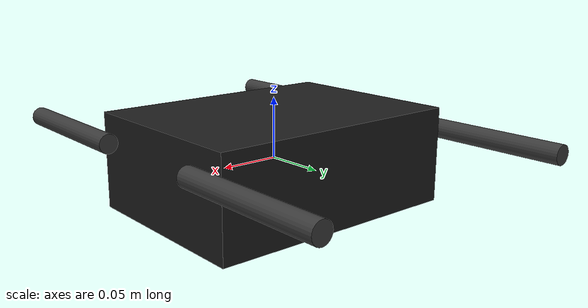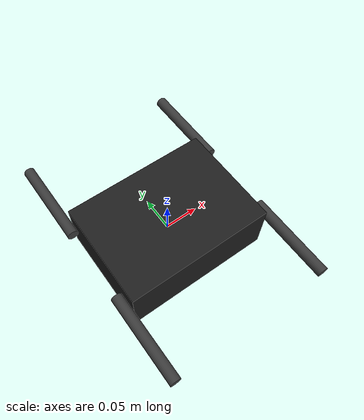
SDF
<?xml version="1.0" ?>
<sdf version="1.9">
  <model name="sunray150">
    <pose>0 0 0 0 0 0</pose>

    <link name="base_link">
      <inertial>
        <mass>0.65</mass>
        <inertia>
          <ixx>0.0040</ixx>
          <iyy>0.0040</iyy>
          <izz>0.0070</izz>
          <ixy>0</ixy>
          <ixz>0</ixz>
          <iyz>0</iyz>
        </inertia>
      </inertial>
      <collision name="body_collision">
        <geometry>
          <box>
            <size>0.22 0.16 0.08</size>
          </box>
        </geometry>
      </collision>
      <visual name="body_visual">
        <geometry>
          <box>
            <size>0.22 0.16 0.08</size>
          </box>
        </geometry>
        <material>
          <ambient>0.05 0.05 0.05 1</ambient>
          <diffuse>0.12 0.12 0.12 1</diffuse>
        </material>
      </visual>

      <sensor name="forward_imu" type="imu">
        <topic>/mosim/gazebo/imu</topic>
        <update_rate>200</update_rate>
        <always_on>true</always_on>
        <visualize>false</visualize>
      </sensor>

      <sensor name="mid360_lidar" type="gpu_lidar">
        <pose>0.035 0 0.045 0 0 0</pose>
        <topic>/mosim/gazebo/lidar_points</topic>
        <update_rate>20</update_rate>
        <always_on>true</always_on>
        <visualize>false</visualize>
        <lidar>
          <scan>
            <horizontal>
              <samples>360</samples>
              <resolution>1</resolution>
              <min_angle>-3.1415926</min_angle>
              <max_angle>3.1415926</max_angle>
            </horizontal>
            <vertical>
              <samples>32</samples>
              <resolution>1</resolution>
              <min_angle>-0.65</min_angle>
              <max_angle>0.65</max_angle>
            </vertical>
          </scan>
          <range>
            <min>0.1</min>
            <max>30.0</max>
            <resolution>0.02</resolution>
          </range>
          <noise>
            <type>gaussian</type>
            <mean>0.0</mean>
            <stddev>0.01</stddev>
          </noise>
        </lidar>
      </sensor>
    </link>

    <link name="rotor_0">
      <pose>0.12 0.12 0.02 0 0 0</pose>
      <inertial>
        <mass>0.005</mass>
        <inertia>
          <ixx>9.75e-07</ixx>
          <iyy>4.17041e-05</iyy>
          <izz>4.26041e-05</izz>
          <ixy>0</ixy>
          <ixz>0</ixz>
          <iyz>0</iyz>
        </inertia>
      </inertial>
      <collision name="rotor_0_collision">
        <geometry>
          <cylinder>
            <radius>0.065</radius>
            <length>0.004</length>
          </cylinder>
        </geometry>
      </collision>
      <visual name="visual">
        <pose>0 0 0 1.5707963 0 0</pose>
        <geometry>
          <cylinder>
            <radius>0.008</radius>
            <length>0.13</length>
          </cylinder>
        </geometry>
        <material>
          <ambient>0.12 0.12 0.12 1</ambient>
          <diffuse>0.24 0.24 0.24 1</diffuse>
        </material>
      </visual>
    </link>
    <link name="rotor_1">
      <pose>-0.12 0.12 0.02 0 0 0</pose>
      <inertial>
        <mass>0.005</mass>
        <inertia>
          <ixx>9.75e-07</ixx>
          <iyy>4.17041e-05</iyy>
          <izz>4.26041e-05</izz>
          <ixy>0</ixy>
          <ixz>0</ixz>
          <iyz>0</iyz>
        </inertia>
      </inertial>
      <collision name="rotor_1_collision">
        <geometry>
          <cylinder>
            <radius>0.065</radius>
            <length>0.004</length>
          </cylinder>
        </geometry>
      </collision>
      <visual name="visual">
        <pose>0 0 0 1.5707963 0 0</pose>
        <geometry>
          <cylinder>
            <radius>0.008</radius>
            <length>0.13</length>
          </cylinder>
        </geometry>
        <material>
          <ambient>0.12 0.12 0.12 1</ambient>
          <diffuse>0.24 0.24 0.24 1</diffuse>
        </material>
      </visual>
    </link>
    <link name="rotor_2">
      <pose>-0.12 -0.12 0.02 0 0 0</pose>
      <inertial>
        <mass>0.005</mass>
        <inertia>
          <ixx>9.75e-07</ixx>
          <iyy>4.17041e-05</iyy>
          <izz>4.26041e-05</izz>
          <ixy>0</ixy>
          <ixz>0</ixz>
          <iyz>0</iyz>
        </inertia>
      </inertial>
      <collision name="rotor_2_collision">
        <geometry>
          <cylinder>
            <radius>0.065</radius>
            <length>0.004</length>
          </cylinder>
        </geometry>
      </collision>
      <visual name="visual">
        <pose>0 0 0 1.5707963 0 0</pose>
        <geometry>
          <cylinder>
            <radius>0.008</radius>
            <length>0.13</length>
          </cylinder>
        </geometry>
        <material>
          <ambient>0.12 0.12 0.12 1</ambient>
          <diffuse>0.24 0.24 0.24 1</diffuse>
        </material>
      </visual>
    </link>
    <link name="rotor_3">
      <pose>0.12 -0.12 0.02 0 0 0</pose>
      <inertial>
        <mass>0.005</mass>
        <inertia>
          <ixx>9.75e-07</ixx>
          <iyy>4.17041e-05</iyy>
          <izz>4.26041e-05</izz>
          <ixy>0</ixy>
          <ixz>0</ixz>
          <iyz>0</iyz>
        </inertia>
      </inertial>
      <collision name="rotor_3_collision">
        <geometry>
          <cylinder>
            <radius>0.065</radius>
            <length>0.004</length>
          </cylinder>
        </geometry>
      </collision>
      <visual name="visual">
        <pose>0 0 0 1.5707963 0 0</pose>
        <geometry>
          <cylinder>
            <radius>0.008</radius>
            <length>0.13</length>
          </cylinder>
        </geometry>
        <material>
          <ambient>0.12 0.12 0.12 1</ambient>
          <diffuse>0.24 0.24 0.24 1</diffuse>
        </material>
      </visual>
    </link>

    <joint name="rotor_0_joint" type="revolute">
      <parent>base_link</parent>
      <child>rotor_0</child>
      <axis>
        <xyz>0 0 1</xyz>
        <limit>
          <lower>-1e+16</lower>
          <upper>1e+16</upper>
        </limit>
      </axis>
    </joint>
    <joint name="rotor_1_joint" type="revolute">
      <parent>base_link</parent>
      <child>rotor_1</child>
      <axis>
        <xyz>0 0 1</xyz>
        <limit>
          <lower>-1e+16</lower>
          <upper>1e+16</upper>
        </limit>
      </axis>
    </joint>
    <joint name="rotor_2_joint" type="revolute">
      <parent>base_link</parent>
      <child>rotor_2</child>
      <axis>
        <xyz>0 0 1</xyz>
        <limit>
          <lower>-1e+16</lower>
          <upper>1e+16</upper>
        </limit>
      </axis>
    </joint>
    <joint name="rotor_3_joint" type="revolute">
      <parent>base_link</parent>
      <child>rotor_3</child>
      <axis>
        <xyz>0 0 1</xyz>
        <limit>
          <lower>-1e+16</lower>
          <upper>1e+16</upper>
        </limit>
      </axis>
    </joint>

    <plugin filename="ignition-gazebo-multicopter-motor-model-system" name="gz::sim::systems::MulticopterMotorModel">
      <robotNamespace>sunray150</robotNamespace>
      <jointName>rotor_0_joint</jointName>
      <linkName>rotor_0</linkName>
      <turningDirection>ccw</turningDirection>
      <timeConstantUp>0.0125</timeConstantUp>
      <timeConstantDown>0.025</timeConstantDown>
      <maxRotVelocity>8000.0</maxRotVelocity>
      <motorConstant>8.54858e-06</motorConstant>
      <momentConstant>0.016</momentConstant>
      <commandSubTopic>gazebo/command/motor_speed</commandSubTopic>
      <motorNumber>0</motorNumber>
      <rotorDragCoefficient>8.06428e-05</rotorDragCoefficient>
      <rollingMomentCoefficient>1e-06</rollingMomentCoefficient>
      <motorSpeedPubTopic>motor_speed/0</motorSpeedPubTopic>
      <rotorVelocitySlowdownSim>1</rotorVelocitySlowdownSim>
      <motorType>velocity</motorType>
    </plugin>
    <plugin filename="ignition-gazebo-multicopter-motor-model-system" name="gz::sim::systems::MulticopterMotorModel">
      <robotNamespace>sunray150</robotNamespace>
      <jointName>rotor_1_joint</jointName>
      <linkName>rotor_1</linkName>
      <turningDirection>cw</turningDirection>
      <timeConstantUp>0.0125</timeConstantUp>
      <timeConstantDown>0.025</timeConstantDown>
      <maxRotVelocity>8000.0</maxRotVelocity>
      <motorConstant>8.54858e-06</motorConstant>
      <momentConstant>0.016</momentConstant>
      <commandSubTopic>gazebo/command/motor_speed</commandSubTopic>
      <motorNumber>1</motorNumber>
      <rotorDragCoefficient>8.06428e-05</rotorDragCoefficient>
      <rollingMomentCoefficient>1e-06</rollingMomentCoefficient>
      <motorSpeedPubTopic>motor_speed/1</motorSpeedPubTopic>
      <rotorVelocitySlowdownSim>1</rotorVelocitySlowdownSim>
      <motorType>velocity</motorType>
    </plugin>
    <plugin filename="ignition-gazebo-multicopter-motor-model-system" name="gz::sim::systems::MulticopterMotorModel">
      <robotNamespace>sunray150</robotNamespace>
      <jointName>rotor_2_joint</jointName>
      <linkName>rotor_2</linkName>
      <turningDirection>ccw</turningDirection>
      <timeConstantUp>0.0125</timeConstantUp>
      <timeConstantDown>0.025</timeConstantDown>
      <maxRotVelocity>8000.0</maxRotVelocity>
      <motorConstant>8.54858e-06</motorConstant>
      <momentConstant>0.016</momentConstant>
      <commandSubTopic>gazebo/command/motor_speed</commandSubTopic>
      <motorNumber>2</motorNumber>
      <rotorDragCoefficient>8.06428e-05</rotorDragCoefficient>
      <rollingMomentCoefficient>1e-06</rollingMomentCoefficient>
      <motorSpeedPubTopic>motor_speed/2</motorSpeedPubTopic>
      <rotorVelocitySlowdownSim>1</rotorVelocitySlowdownSim>
      <motorType>velocity</motorType>
    </plugin>
    <plugin filename="ignition-gazebo-multicopter-motor-model-system" name="gz::sim::systems::MulticopterMotorModel">
      <robotNamespace>sunray150</robotNamespace>
      <jointName>rotor_3_joint</jointName>
      <linkName>rotor_3</linkName>
      <turningDirection>cw</turningDirection>
      <timeConstantUp>0.0125</timeConstantUp>
      <timeConstantDown>0.025</timeConstantDown>
      <maxRotVelocity>8000.0</maxRotVelocity>
      <motorConstant>8.54858e-06</motorConstant>
      <momentConstant>0.016</momentConstant>
      <commandSubTopic>gazebo/command/motor_speed</commandSubTopic>
      <motorNumber>3</motorNumber>
      <rotorDragCoefficient>8.06428e-05</rotorDragCoefficient>
      <rollingMomentCoefficient>1e-06</rollingMomentCoefficient>
      <motorSpeedPubTopic>motor_speed/3</motorSpeedPubTopic>
      <rotorVelocitySlowdownSim>1</rotorVelocitySlowdownSim>
      <motorType>velocity</motorType>
    </plugin>
  </model>
</sdf>
